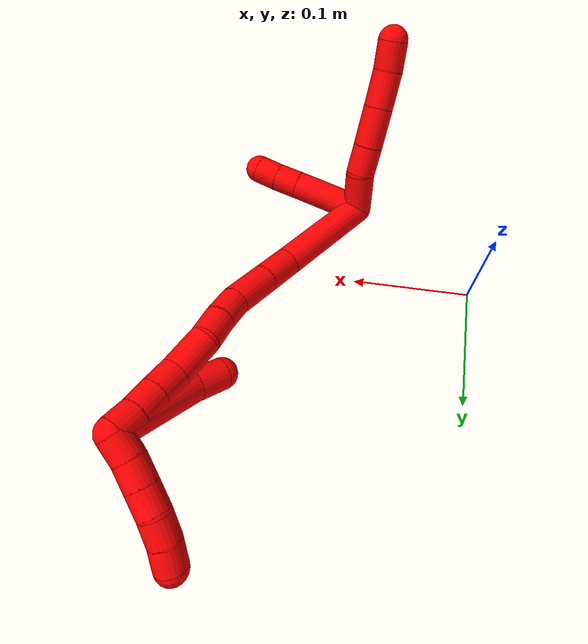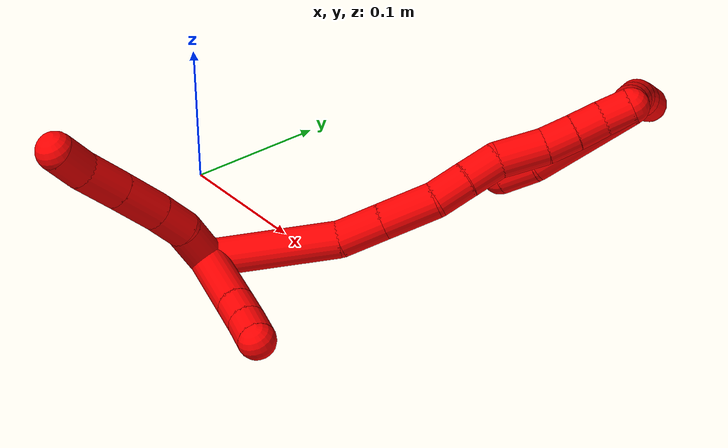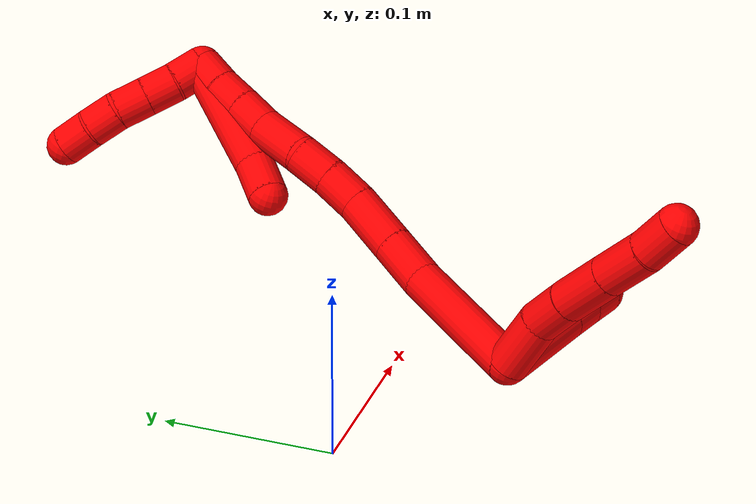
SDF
<sdf version="1.7">
 <world name="default">
  <model name="2">
   <static>0</static>
   <link name="2">
    <collision name="collision-cylinder-e_1_2_8">
     <pose>-0.002932 -0.001728 -0.017487 3.04307 -0.165318 -2.06804</pose>
     <geometry><cylinder><radius>0.0125</radius><length>0.035631</length></cylinder></geometry>
     <surface>
      <friction><ode><mu>1.16</mu><mu2>1.16</mu2><slip1>0</slip1><slip2>0</slip2></ode></friction>
      <contact><ode><kp>1e+06</kp><kd>1</kd><max_vel>0</max_vel><min_depth>0.001</min_depth></ode></contact>
     </surface>
    </collision>
    <visual name="visual-cylinder-e_1_2_8">
     <pose>-0.002932 -0.001728 -0.017487 3.04307 -0.165318 -2.06804</pose>
     <geometry><cylinder><radius>0.0125</radius><length>0.035631</length></cylinder></geometry>
     <material><ambient>1 0 0 1</ambient></material>
    </visual>
    <collision name="collision-cylinder-e_2_8_9">
     <pose>-0.007886 -0.007983 -0.04658 2.76972 -0.160983 -0.810209</pose>
     <geometry><cylinder><radius>0.0125</radius><length>0.025239</length></cylinder></geometry>
     <surface>
      <friction><ode><mu>1.16</mu><mu2>1.16</mu2><slip1>0</slip1><slip2>0</slip2></ode></friction>
      <contact><ode><kp>1e+06</kp><kd>1</kd><max_vel>0</max_vel><min_depth>0.001</min_depth></ode></contact>
     </surface>
    </collision>
    <visual name="visual-cylinder-e_2_8_9">
     <pose>-0.007886 -0.007983 -0.04658 2.76972 -0.160983 -0.810209</pose>
     <geometry><cylinder><radius>0.0125</radius><length>0.025239</length></cylinder></geometry>
     <material><ambient>1 0 0 1</ambient></material>
    </visual>
    <collision name="collision-cylinder-e_3_9_10">
     <pose>-0.013304 -0.019091 -0.073294 2.73077 -0.203138 -0.909908</pose>
     <geometry><cylinder><radius>0.0125</radius><length>0.033654</length></cylinder></geometry>
     <surface>
      <friction><ode><mu>1.16</mu><mu2>1.16</mu2><slip1>0</slip1><slip2>0</slip2></ode></friction>
      <contact><ode><kp>1e+06</kp><kd>1</kd><max_vel>0</max_vel><min_depth>0.001</min_depth></ode></contact>
     </surface>
    </collision>
    <visual name="visual-cylinder-e_3_9_10">
     <pose>-0.013304 -0.019091 -0.073294 2.73077 -0.203138 -0.909908</pose>
     <geometry><cylinder><radius>0.0125</radius><length>0.033654</length></cylinder></geometry>
     <material><ambient>1 0 0 1</ambient></material>
    </visual>
    <collision name="collision-cylinder-e_4_10_11">
     <pose>-0.020004 -0.031756 -0.102217 2.72673 -0.215596 -0.949891</pose>
     <geometry><cylinder><radius>0.0125</radius><length>0.030902</length></cylinder></geometry>
     <surface>
      <friction><ode><mu>1.16</mu><mu2>1.16</mu2><slip1>0</slip1><slip2>0</slip2></ode></friction>
      <contact><ode><kp>1e+06</kp><kd>1</kd><max_vel>0</max_vel><min_depth>0.001</min_depth></ode></contact>
     </surface>
    </collision>
    <visual name="visual-cylinder-e_4_10_11">
     <pose>-0.020004 -0.031756 -0.102217 2.72673 -0.215596 -0.949891</pose>
     <geometry><cylinder><radius>0.0125</radius><length>0.030902</length></cylinder></geometry>
     <material><ambient>1 0 0 1</ambient></material>
    </visual>
    <collision name="collision-cylinder-e_5_11_6">
     <pose>-0.026097 -0.041088 -0.127547 2.86673 -0.228862 -1.38674</pose>
     <geometry><cylinder><radius>0.0125</radius><length>0.024574</length></cylinder></geometry>
     <surface>
      <friction><ode><mu>1.16</mu><mu2>1.16</mu2><slip1>0</slip1><slip2>0</slip2></ode></friction>
      <contact><ode><kp>1e+06</kp><kd>1</kd><max_vel>0</max_vel><min_depth>0.001</min_depth></ode></contact>
     </surface>
    </collision>
    <visual name="visual-cylinder-e_5_11_6">
     <pose>-0.026097 -0.041088 -0.127547 2.86673 -0.228862 -1.38674</pose>
     <geometry><cylinder><radius>0.0125</radius><length>0.024574</length></cylinder></geometry>
     <material><ambient>1 0 0 1</ambient></material>
    </visual>
    <collision name="collision-cylinder-e_1_2_12">
     <pose>-0.026779 0.012388 -0.002346 -1.75792 -1.13077 1.30718</pose>
     <geometry><cylinder><radius>0.0125</radius><length>0.059196</length></cylinder></geometry>
     <surface>
      <friction><ode><mu>1.16</mu><mu2>1.16</mu2><slip1>0</slip1><slip2>0</slip2></ode></friction>
      <contact><ode><kp>1e+06</kp><kd>1</kd><max_vel>0</max_vel><min_depth>0.001</min_depth></ode></contact>
     </surface>
    </collision>
    <visual name="visual-cylinder-e_1_2_12">
     <pose>-0.026779 0.012388 -0.002346 -1.75792 -1.13077 1.30718</pose>
     <geometry><cylinder><radius>0.0125</radius><length>0.059196</length></cylinder></geometry>
     <material><ambient>1 0 0 1</ambient></material>
    </visual>
    <collision name="collision-cylinder-e_2_12_13">
     <pose>-0.062867 0.029044 -0.005302 -1.71303 -1.13698 1.27005</pose>
     <geometry><cylinder><radius>0.0125</radius><length>0.02052</length></cylinder></geometry>
     <surface>
      <friction><ode><mu>1.16</mu><mu2>1.16</mu2><slip1>0</slip1><slip2>0</slip2></ode></friction>
      <contact><ode><kp>1e+06</kp><kd>1</kd><max_vel>0</max_vel><min_depth>0.001</min_depth></ode></contact>
     </surface>
    </collision>
    <visual name="visual-cylinder-e_2_12_13">
     <pose>-0.062867 0.029044 -0.005302 -1.71303 -1.13698 1.27005</pose>
     <geometry><cylinder><radius>0.0125</radius><length>0.02052</length></cylinder></geometry>
     <material><ambient>1 0 0 1</ambient></material>
    </visual>
    <collision name="collision-cylinder-e_3_13_5">
     <pose>-0.08147 0.03725 -0.006908 -1.81834 -1.15893 1.39774</pose>
     <geometry><cylinder><radius>0.0125</radius><length>0.020284</length></cylinder></geometry>
     <surface>
      <friction><ode><mu>1.16</mu><mu2>1.16</mu2><slip1>0</slip1><slip2>0</slip2></ode></friction>
      <contact><ode><kp>1e+06</kp><kd>1</kd><max_vel>0</max_vel><min_depth>0.001</min_depth></ode></contact>
     </surface>
    </collision>
    <visual name="visual-cylinder-e_3_13_5">
     <pose>-0.08147 0.03725 -0.006908 -1.81834 -1.15893 1.39774</pose>
     <geometry><cylinder><radius>0.0125</radius><length>0.020284</length></cylinder></geometry>
     <material><ambient>1 0 0 1</ambient></material>
    </visual>
    <collision name="collision-cylinder-e_1_2_14">
     <pose>0.002295 0.043692 0.006559 -1.4218 0.051903 -0.044696</pose>
     <geometry><cylinder><radius>0.0125</radius><length>0.088481</length></cylinder></geometry>
     <surface>
      <friction><ode><mu>1.16</mu><mu2>1.16</mu2><slip1>0</slip1><slip2>0</slip2></ode></friction>
      <contact><ode><kp>1e+06</kp><kd>1</kd><max_vel>0</max_vel><min_depth>0.001</min_depth></ode></contact>
     </surface>
    </collision>
    <visual name="visual-cylinder-e_1_2_14">
     <pose>0.002295 0.043692 0.006559 -1.4218 0.051903 -0.044696</pose>
     <geometry><cylinder><radius>0.0125</radius><length>0.088481</length></cylinder></geometry>
     <material><ambient>1 0 0 1</ambient></material>
    </visual>
    <collision name="collision-cylinder-e_2_14_15">
     <pose>0.00735 0.102458 0.012016 -1.64371 0.18057 -0.194158</pose>
     <geometry><cylinder><radius>0.0125</radius><length>0.03073</length></cylinder></geometry>
     <surface>
      <friction><ode><mu>1.16</mu><mu2>1.16</mu2><slip1>0</slip1><slip2>0</slip2></ode></friction>
      <contact><ode><kp>1e+06</kp><kd>1</kd><max_vel>0</max_vel><min_depth>0.001</min_depth></ode></contact>
     </surface>
    </collision>
    <visual name="visual-cylinder-e_2_14_15">
     <pose>0.00735 0.102458 0.012016 -1.64371 0.18057 -0.194158</pose>
     <geometry><cylinder><radius>0.0125</radius><length>0.03073</length></cylinder></geometry>
     <material><ambient>1 0 0 1</ambient></material>
    </visual>
    <collision name="collision-cylinder-e_3_15_16">
     <pose>0.013461 0.135815 0.009602 -1.64251 0.180852 -0.194228</pose>
     <geometry><cylinder><radius>0.0125</radius><length>0.037267</length></cylinder></geometry>
     <surface>
      <friction><ode><mu>1.16</mu><mu2>1.16</mu2><slip1>0</slip1><slip2>0</slip2></ode></friction>
      <contact><ode><kp>1e+06</kp><kd>1</kd><max_vel>0</max_vel><min_depth>0.001</min_depth></ode></contact>
     </surface>
    </collision>
    <visual name="visual-cylinder-e_3_15_16">
     <pose>0.013461 0.135815 0.009602 -1.64251 0.180852 -0.194228</pose>
     <geometry><cylinder><radius>0.0125</radius><length>0.037267</length></cylinder></geometry>
     <material><ambient>1 0 0 1</ambient></material>
    </visual>
    <collision name="collision-cylinder-e_4_16_17">
     <pose>0.021536 0.165184 0.006841 -1.70059 0.399752 -0.453545</pose>
     <geometry><cylinder><radius>0.0125</radius><length>0.024273</length></cylinder></geometry>
     <surface>
      <friction><ode><mu>1.16</mu><mu2>1.16</mu2><slip1>0</slip1><slip2>0</slip2></ode></friction>
      <contact><ode><kp>1e+06</kp><kd>1</kd><max_vel>0</max_vel><min_depth>0.001</min_depth></ode></contact>
     </surface>
    </collision>
    <visual name="visual-cylinder-e_4_16_17">
     <pose>0.021536 0.165184 0.006841 -1.70059 0.399752 -0.453545</pose>
     <geometry><cylinder><radius>0.0125</radius><length>0.024273</length></cylinder></geometry>
     <material><ambient>1 0 0 1</ambient></material>
    </visual>
    <collision name="collision-cylinder-e_5_17_18">
     <pose>0.031479 0.186946 0.004685 -1.6371 0.453884 -0.483858</pose>
     <geometry><cylinder><radius>0.0125</radius><length>0.02381</length></cylinder></geometry>
     <surface>
      <friction><ode><mu>1.16</mu><mu2>1.16</mu2><slip1>0</slip1><slip2>0</slip2></ode></friction>
      <contact><ode><kp>1e+06</kp><kd>1</kd><max_vel>0</max_vel><min_depth>0.001</min_depth></ode></contact>
     </surface>
    </collision>
    <visual name="visual-cylinder-e_5_17_18">
     <pose>0.031479 0.186946 0.004685 -1.6371 0.453884 -0.483858</pose>
     <geometry><cylinder><radius>0.0125</radius><length>0.02381</length></cylinder></geometry>
     <material><ambient>1 0 0 1</ambient></material>
    </visual>
    <collision name="collision-cylinder-e_6_18_19">
     <pose>0.04083 0.213397 0.006187 -1.43158 0.253767 -0.220977</pose>
     <geometry><cylinder><radius>0.0125</radius><length>0.032911</length></cylinder></geometry>
     <surface>
      <friction><ode><mu>1.16</mu><mu2>1.16</mu2><slip1>0</slip1><slip2>0</slip2></ode></friction>
      <contact><ode><kp>1e+06</kp><kd>1</kd><max_vel>0</max_vel><min_depth>0.001</min_depth></ode></contact>
     </surface>
    </collision>
    <visual name="visual-cylinder-e_6_18_19">
     <pose>0.04083 0.213397 0.006187 -1.43158 0.253767 -0.220977</pose>
     <geometry><cylinder><radius>0.0125</radius><length>0.032911</length></cylinder></geometry>
     <material><ambient>1 0 0 1</ambient></material>
    </visual>
    <collision name="collision-cylinder-e_7_19_20">
     <pose>0.047949 0.239617 0.008049 -1.6041 0.278363 -0.287665</pose>
     <geometry><cylinder><radius>0.0125</radius><length>0.02174</length></cylinder></geometry>
     <surface>
      <friction><ode><mu>1.16</mu><mu2>1.16</mu2><slip1>0</slip1><slip2>0</slip2></ode></friction>
      <contact><ode><kp>1e+06</kp><kd>1</kd><max_vel>0</max_vel><min_depth>0.001</min_depth></ode></contact>
     </surface>
    </collision>
    <visual name="visual-cylinder-e_7_19_20">
     <pose>0.047949 0.239617 0.008049 -1.6041 0.278363 -0.287665</pose>
     <geometry><cylinder><radius>0.0125</radius><length>0.02174</length></cylinder></geometry>
     <material><ambient>1 0 0 1</ambient></material>
    </visual>
    <collision name="collision-cylinder-e_8_20_21">
     <pose>0.054082 0.259819 0.007346 -1.60712 0.311757 -0.323098</pose>
     <geometry><cylinder><radius>0.0125</radius><length>0.020515</length></cylinder></geometry>
     <surface>
      <friction><ode><mu>1.16</mu><mu2>1.16</mu2><slip1>0</slip1><slip2>0</slip2></ode></friction>
      <contact><ode><kp>1e+06</kp><kd>1</kd><max_vel>0</max_vel><min_depth>0.001</min_depth></ode></contact>
     </surface>
    </collision>
    <visual name="visual-cylinder-e_8_20_21">
     <pose>0.054082 0.259819 0.007346 -1.60712 0.311757 -0.323098</pose>
     <geometry><cylinder><radius>0.0125</radius><length>0.020515</length></cylinder></geometry>
     <material><ambient>1 0 0 1</ambient></material>
    </visual>
    <collision name="collision-cylinder-e_9_21_1">
     <pose>0.059456 0.279435 0.006233 -1.64765 0.221624 -0.239184</pose>
     <geometry><cylinder><radius>0.0125</radius><length>0.020272</length></cylinder></geometry>
     <surface>
      <friction><ode><mu>1.16</mu><mu2>1.16</mu2><slip1>0</slip1><slip2>0</slip2></ode></friction>
      <contact><ode><kp>1e+06</kp><kd>1</kd><max_vel>0</max_vel><min_depth>0.001</min_depth></ode></contact>
     </surface>
    </collision>
    <visual name="visual-cylinder-e_9_21_1">
     <pose>0.059456 0.279435 0.006233 -1.64765 0.221624 -0.239184</pose>
     <geometry><cylinder><radius>0.0125</radius><length>0.020272</length></cylinder></geometry>
     <material><ambient>1 0 0 1</ambient></material>
    </visual>
    <collision name="collision-cylinder-e_1_1_22">
     <pose>0.06987 0.288856 0.011201 0.076223 0.958891 0.039643</pose>
     <geometry><cylinder><radius>0.0125</radius><length>0.02</length></cylinder></geometry>
     <surface>
      <friction><ode><mu>1.16</mu><mu2>1.16</mu2><slip1>0</slip1><slip2>0</slip2></ode></friction>
      <contact><ode><kp>1e+06</kp><kd>1</kd><max_vel>0</max_vel><min_depth>0.001</min_depth></ode></contact>
     </surface>
    </collision>
    <visual name="visual-cylinder-e_1_1_22">
     <pose>0.06987 0.288856 0.011201 0.076223 0.958891 0.039643</pose>
     <geometry><cylinder><radius>0.0125</radius><length>0.02</length></cylinder></geometry>
     <material><ambient>1 0 0 1</ambient></material>
    </visual>
    <collision name="collision-cylinder-e_2_22_23">
     <pose>0.08608 0.289253 0.022837 -0.140347 0.931407 -0.070621</pose>
     <geometry><cylinder><radius>0.0125</radius><length>0.02</length></cylinder></geometry>
     <surface>
      <friction><ode><mu>1.16</mu><mu2>1.16</mu2><slip1>0</slip1><slip2>0</slip2></ode></friction>
      <contact><ode><kp>1e+06</kp><kd>1</kd><max_vel>0</max_vel><min_depth>0.001</min_depth></ode></contact>
     </surface>
    </collision>
    <visual name="visual-cylinder-e_2_22_23">
     <pose>0.08608 0.289253 0.022837 -0.140347 0.931407 -0.070621</pose>
     <geometry><cylinder><radius>0.0125</radius><length>0.02</length></cylinder></geometry>
     <material><ambient>1 0 0 1</ambient></material>
    </visual>
    <collision name="collision-cylinder-e_3_23_24">
     <pose>0.102158 0.290988 0.034604 -0.152338 0.936344 -0.077143</pose>
     <geometry><cylinder><radius>0.0125</radius><length>0.02</length></cylinder></geometry>
     <surface>
      <friction><ode><mu>1.16</mu><mu2>1.16</mu2><slip1>0</slip1><slip2>0</slip2></ode></friction>
      <contact><ode><kp>1e+06</kp><kd>1</kd><max_vel>0</max_vel><min_depth>0.001</min_depth></ode></contact>
     </surface>
    </collision>
    <visual name="visual-cylinder-e_3_23_24">
     <pose>0.102158 0.290988 0.034604 -0.152338 0.936344 -0.077143</pose>
     <geometry><cylinder><radius>0.0125</radius><length>0.02</length></cylinder></geometry>
     <material><ambient>1 0 0 1</ambient></material>
    </visual>
    <collision name="collision-cylinder-e_4_24_25">
     <pose>0.11694 0.292948 0.047785 -0.143888 0.737977 -0.055723</pose>
     <geometry><cylinder><radius>0.0125</radius><length>0.02</length></cylinder></geometry>
     <surface>
      <friction><ode><mu>1.16</mu><mu2>1.16</mu2><slip1>0</slip1><slip2>0</slip2></ode></friction>
      <contact><ode><kp>1e+06</kp><kd>1</kd><max_vel>0</max_vel><min_depth>0.001</min_depth></ode></contact>
     </surface>
    </collision>
    <visual name="visual-cylinder-e_4_24_25">
     <pose>0.11694 0.292948 0.047785 -0.143888 0.737977 -0.055723</pose>
     <geometry><cylinder><radius>0.0125</radius><length>0.02</length></cylinder></geometry>
     <material><ambient>1 0 0 1</ambient></material>
    </visual>
    <collision name="collision-cylinder-e_5_25_4">
     <pose>0.129326 0.29584 0.063146 -0.223939 0.601408 -0.069709</pose>
     <geometry><cylinder><radius>0.0125</radius><length>0.02</length></cylinder></geometry>
     <surface>
      <friction><ode><mu>1.16</mu><mu2>1.16</mu2><slip1>0</slip1><slip2>0</slip2></ode></friction>
      <contact><ode><kp>1e+06</kp><kd>1</kd><max_vel>0</max_vel><min_depth>0.001</min_depth></ode></contact>
     </surface>
    </collision>
    <visual name="visual-cylinder-e_5_25_4">
     <pose>0.129326 0.29584 0.063146 -0.223939 0.601408 -0.069709</pose>
     <geometry><cylinder><radius>0.0125</radius><length>0.02</length></cylinder></geometry>
     <material><ambient>1 0 0 1</ambient></material>
    </visual>
    <collision name="collision-cylinder-e_1_1_26">
     <pose>0.056534 0.253986 0.016394 1.27083 -0.138467 -0.102186</pose>
     <geometry><cylinder><radius>0.0125</radius><length>0.074631</length></cylinder></geometry>
     <surface>
      <friction><ode><mu>1.16</mu><mu2>1.16</mu2><slip1>0</slip1><slip2>0</slip2></ode></friction>
      <contact><ode><kp>1e+06</kp><kd>1</kd><max_vel>0</max_vel><min_depth>0.001</min_depth></ode></contact>
     </surface>
    </collision>
    <visual name="visual-cylinder-e_1_1_26">
     <pose>0.056534 0.253986 0.016394 1.27083 -0.138467 -0.102186</pose>
     <geometry><cylinder><radius>0.0125</radius><length>0.074631</length></cylinder></geometry>
     <material><ambient>1 0 0 1</ambient></material>
    </visual>
    <collision name="collision-cylinder-e_2_26_3">
     <pose>0.051943 0.206258 0.029832 1.3708 0.044152 0.036102</pose>
     <geometry><cylinder><radius>0.0125</radius><length>0.025369</length></cylinder></geometry>
     <surface>
      <friction><ode><mu>1.16</mu><mu2>1.16</mu2><slip1>0</slip1><slip2>0</slip2></ode></friction>
      <contact><ode><kp>1e+06</kp><kd>1</kd><max_vel>0</max_vel><min_depth>0.001</min_depth></ode></contact>
     </surface>
    </collision>
    <visual name="visual-cylinder-e_2_26_3">
     <pose>0.051943 0.206258 0.029832 1.3708 0.044152 0.036102</pose>
     <geometry><cylinder><radius>0.0125</radius><length>0.025369</length></cylinder></geometry>
     <material><ambient>1 0 0 1</ambient></material>
    </visual>
    <collision name="collision-sphere-3">
     <pose>0.052503 0.193838 0.03235 0 -0 0</pose>
     <geometry><sphere><radius>0.0125</radius></sphere></geometry>
     <surface>
      <friction><ode><mu>1.16</mu><mu2>1.16</mu2><slip1>0</slip1><slip2>0</slip2></ode></friction>
      <contact><ode><kp>1e+06</kp><kd>1</kd><max_vel>0</max_vel><min_depth>0.001</min_depth></ode></contact>
     </surface>
    </collision>
    <visual name="visual-sphere-3">
     <pose>0.052503 0.193838 0.03235 0 -0 0</pose>
     <geometry><sphere><radius>0.0125</radius></sphere></geometry>
     <material><ambient>1 0 0 1</ambient></material>
    </visual>
    <collision name="collision-sphere-26">
     <pose>0.051383 0.218678 0.027315 0 -0 0</pose>
     <geometry><sphere><radius>0.0125</radius></sphere></geometry>
     <surface>
      <friction><ode><mu>1.16</mu><mu2>1.16</mu2><slip1>0</slip1><slip2>0</slip2></ode></friction>
      <contact><ode><kp>1e+06</kp><kd>1</kd><max_vel>0</max_vel><min_depth>0.001</min_depth></ode></contact>
     </surface>
    </collision>
    <visual name="visual-sphere-26">
     <pose>0.051383 0.218678 0.027315 0 -0 0</pose>
     <geometry><sphere><radius>0.0125</radius></sphere></geometry>
     <material><ambient>1 0 0 1</ambient></material>
    </visual>
    <collision name="collision-sphere-4">
     <pose>0.134984 0.297671 0.071186 0 -0 0</pose>
     <geometry><sphere><radius>0.0125</radius></sphere></geometry>
     <surface>
      <friction><ode><mu>1.16</mu><mu2>1.16</mu2><slip1>0</slip1><slip2>0</slip2></ode></friction>
      <contact><ode><kp>1e+06</kp><kd>1</kd><max_vel>0</max_vel><min_depth>0.001</min_depth></ode></contact>
     </surface>
    </collision>
    <visual name="visual-sphere-4">
     <pose>0.134984 0.297671 0.071186 0 -0 0</pose>
     <geometry><sphere><radius>0.0125</radius></sphere></geometry>
     <material><ambient>1 0 0 1</ambient></material>
    </visual>
    <collision name="collision-sphere-25">
     <pose>0.123668 0.294009 0.055107 0 -0 0</pose>
     <geometry><sphere><radius>0.0125</radius></sphere></geometry>
     <surface>
      <friction><ode><mu>1.16</mu><mu2>1.16</mu2><slip1>0</slip1><slip2>0</slip2></ode></friction>
      <contact><ode><kp>1e+06</kp><kd>1</kd><max_vel>0</max_vel><min_depth>0.001</min_depth></ode></contact>
     </surface>
    </collision>
    <visual name="visual-sphere-25">
     <pose>0.123668 0.294009 0.055107 0 -0 0</pose>
     <geometry><sphere><radius>0.0125</radius></sphere></geometry>
     <material><ambient>1 0 0 1</ambient></material>
    </visual>
    <collision name="collision-sphere-24">
     <pose>0.110212 0.291887 0.040463 0 -0 0</pose>
     <geometry><sphere><radius>0.0125</radius></sphere></geometry>
     <surface>
      <friction><ode><mu>1.16</mu><mu2>1.16</mu2><slip1>0</slip1><slip2>0</slip2></ode></friction>
      <contact><ode><kp>1e+06</kp><kd>1</kd><max_vel>0</max_vel><min_depth>0.001</min_depth></ode></contact>
     </surface>
    </collision>
    <visual name="visual-sphere-24">
     <pose>0.110212 0.291887 0.040463 0 -0 0</pose>
     <geometry><sphere><radius>0.0125</radius></sphere></geometry>
     <material><ambient>1 0 0 1</ambient></material>
    </visual>
    <collision name="collision-sphere-23">
     <pose>0.094104 0.290088 0.028745 0 -0 0</pose>
     <geometry><sphere><radius>0.0125</radius></sphere></geometry>
     <surface>
      <friction><ode><mu>1.16</mu><mu2>1.16</mu2><slip1>0</slip1><slip2>0</slip2></ode></friction>
      <contact><ode><kp>1e+06</kp><kd>1</kd><max_vel>0</max_vel><min_depth>0.001</min_depth></ode></contact>
     </surface>
    </collision>
    <visual name="visual-sphere-23">
     <pose>0.094104 0.290088 0.028745 0 -0 0</pose>
     <geometry><sphere><radius>0.0125</radius></sphere></geometry>
     <material><ambient>1 0 0 1</ambient></material>
    </visual>
    <collision name="collision-sphere-22">
     <pose>0.078055 0.288419 0.016929 0 -0 0</pose>
     <geometry><sphere><radius>0.0125</radius></sphere></geometry>
     <surface>
      <friction><ode><mu>1.16</mu><mu2>1.16</mu2><slip1>0</slip1><slip2>0</slip2></ode></friction>
      <contact><ode><kp>1e+06</kp><kd>1</kd><max_vel>0</max_vel><min_depth>0.001</min_depth></ode></contact>
     </surface>
    </collision>
    <visual name="visual-sphere-22">
     <pose>0.078055 0.288419 0.016929 0 -0 0</pose>
     <geometry><sphere><radius>0.0125</radius></sphere></geometry>
     <material><ambient>1 0 0 1</ambient></material>
    </visual>
    <collision name="collision-sphere-1">
     <pose>0.061684 0.289294 0.005473 0 -0 0</pose>
     <geometry><sphere><radius>0.0125</radius></sphere></geometry>
     <surface>
      <friction><ode><mu>1.16</mu><mu2>1.16</mu2><slip1>0</slip1><slip2>0</slip2></ode></friction>
      <contact><ode><kp>1e+06</kp><kd>1</kd><max_vel>0</max_vel><min_depth>0.001</min_depth></ode></contact>
     </surface>
    </collision>
    <visual name="visual-sphere-1">
     <pose>0.061684 0.289294 0.005473 0 -0 0</pose>
     <geometry><sphere><radius>0.0125</radius></sphere></geometry>
     <material><ambient>1 0 0 1</ambient></material>
    </visual>
    <collision name="collision-sphere-21">
     <pose>0.057228 0.269576 0.006992 0 -0 0</pose>
     <geometry><sphere><radius>0.0125</radius></sphere></geometry>
     <surface>
      <friction><ode><mu>1.16</mu><mu2>1.16</mu2><slip1>0</slip1><slip2>0</slip2></ode></friction>
      <contact><ode><kp>1e+06</kp><kd>1</kd><max_vel>0</max_vel><min_depth>0.001</min_depth></ode></contact>
     </surface>
    </collision>
    <visual name="visual-sphere-21">
     <pose>0.057228 0.269576 0.006992 0 -0 0</pose>
     <geometry><sphere><radius>0.0125</radius></sphere></geometry>
     <material><ambient>1 0 0 1</ambient></material>
    </visual>
    <collision name="collision-sphere-6">
     <pose>-0.028885 -0.044336 -0.139065 0 -0 0</pose>
     <geometry><sphere><radius>0.0125</radius></sphere></geometry>
     <surface>
      <friction><ode><mu>1.16</mu><mu2>1.16</mu2><slip1>0</slip1><slip2>0</slip2></ode></friction>
      <contact><ode><kp>1e+06</kp><kd>1</kd><max_vel>0</max_vel><min_depth>0.001</min_depth></ode></contact>
     </surface>
    </collision>
    <visual name="visual-sphere-6">
     <pose>-0.028885 -0.044336 -0.139065 0 -0 0</pose>
     <geometry><sphere><radius>0.0125</radius></sphere></geometry>
     <material><ambient>1 0 0 1</ambient></material>
    </visual>
    <collision name="collision-sphere-11">
     <pose>-0.023309 -0.03784 -0.11603 0 -0 0</pose>
     <geometry><sphere><radius>0.0125</radius></sphere></geometry>
     <surface>
      <friction><ode><mu>1.16</mu><mu2>1.16</mu2><slip1>0</slip1><slip2>0</slip2></ode></friction>
      <contact><ode><kp>1e+06</kp><kd>1</kd><max_vel>0</max_vel><min_depth>0.001</min_depth></ode></contact>
     </surface>
    </collision>
    <visual name="visual-sphere-11">
     <pose>-0.023309 -0.03784 -0.11603 0 -0 0</pose>
     <geometry><sphere><radius>0.0125</radius></sphere></geometry>
     <material><ambient>1 0 0 1</ambient></material>
    </visual>
    <collision name="collision-sphere-10">
     <pose>-0.016699 -0.025673 -0.088404 0 -0 0</pose>
     <geometry><sphere><radius>0.0125</radius></sphere></geometry>
     <surface>
      <friction><ode><mu>1.16</mu><mu2>1.16</mu2><slip1>0</slip1><slip2>0</slip2></ode></friction>
      <contact><ode><kp>1e+06</kp><kd>1</kd><max_vel>0</max_vel><min_depth>0.001</min_depth></ode></contact>
     </surface>
    </collision>
    <visual name="visual-sphere-10">
     <pose>-0.016699 -0.025673 -0.088404 0 -0 0</pose>
     <geometry><sphere><radius>0.0125</radius></sphere></geometry>
     <material><ambient>1 0 0 1</ambient></material>
    </visual>
    <collision name="collision-sphere-9">
     <pose>-0.009909 -0.012509 -0.058185 0 -0 0</pose>
     <geometry><sphere><radius>0.0125</radius></sphere></geometry>
     <surface>
      <friction><ode><mu>1.16</mu><mu2>1.16</mu2><slip1>0</slip1><slip2>0</slip2></ode></friction>
      <contact><ode><kp>1e+06</kp><kd>1</kd><max_vel>0</max_vel><min_depth>0.001</min_depth></ode></contact>
     </surface>
    </collision>
    <visual name="visual-sphere-9">
     <pose>-0.009909 -0.012509 -0.058185 0 -0 0</pose>
     <geometry><sphere><radius>0.0125</radius></sphere></geometry>
     <material><ambient>1 0 0 1</ambient></material>
    </visual>
    <collision name="collision-sphere-2">
     <geometry><sphere><radius>0.0125</radius></sphere></geometry>
     <surface>
      <friction><ode><mu>1.16</mu><mu2>1.16</mu2><slip1>0</slip1><slip2>0</slip2></ode></friction>
      <contact><ode><kp>1e+06</kp><kd>1</kd><max_vel>0</max_vel><min_depth>0.001</min_depth></ode></contact>
     </surface>
    </collision>
    <visual name="visual-sphere-2">
     <geometry><sphere><radius>0.0125</radius></sphere></geometry>
     <material><ambient>1 0 0 1</ambient></material>
    </visual>
    <collision name="collision-sphere-19">
     <pose>0.044962 0.229171 0.008397 0 -0 0</pose>
     <geometry><sphere><radius>0.0125</radius></sphere></geometry>
     <surface>
      <friction><ode><mu>1.16</mu><mu2>1.16</mu2><slip1>0</slip1><slip2>0</slip2></ode></friction>
      <contact><ode><kp>1e+06</kp><kd>1</kd><max_vel>0</max_vel><min_depth>0.001</min_depth></ode></contact>
     </surface>
    </collision>
    <visual name="visual-sphere-19">
     <pose>0.044962 0.229171 0.008397 0 -0 0</pose>
     <geometry><sphere><radius>0.0125</radius></sphere></geometry>
     <material><ambient>1 0 0 1</ambient></material>
    </visual>
    <collision name="collision-sphere-8">
     <pose>-0.005864 -0.003457 -0.034975 0 -0 0</pose>
     <geometry><sphere><radius>0.0125</radius></sphere></geometry>
     <surface>
      <friction><ode><mu>1.16</mu><mu2>1.16</mu2><slip1>0</slip1><slip2>0</slip2></ode></friction>
      <contact><ode><kp>1e+06</kp><kd>1</kd><max_vel>0</max_vel><min_depth>0.001</min_depth></ode></contact>
     </surface>
    </collision>
    <visual name="visual-sphere-8">
     <pose>-0.005864 -0.003457 -0.034975 0 -0 0</pose>
     <geometry><sphere><radius>0.0125</radius></sphere></geometry>
     <material><ambient>1 0 0 1</ambient></material>
    </visual>
    <collision name="collision-sphere-12">
     <pose>-0.053557 0.024775 -0.004691 0 -0 0</pose>
     <geometry><sphere><radius>0.0125</radius></sphere></geometry>
     <surface>
      <friction><ode><mu>1.16</mu><mu2>1.16</mu2><slip1>0</slip1><slip2>0</slip2></ode></friction>
      <contact><ode><kp>1e+06</kp><kd>1</kd><max_vel>0</max_vel><min_depth>0.001</min_depth></ode></contact>
     </surface>
    </collision>
    <visual name="visual-sphere-12">
     <pose>-0.053557 0.024775 -0.004691 0 -0 0</pose>
     <geometry><sphere><radius>0.0125</radius></sphere></geometry>
     <material><ambient>1 0 0 1</ambient></material>
    </visual>
    <collision name="collision-sphere-13">
     <pose>-0.072176 0.033313 -0.005914 0 -0 0</pose>
     <geometry><sphere><radius>0.0125</radius></sphere></geometry>
     <surface>
      <friction><ode><mu>1.16</mu><mu2>1.16</mu2><slip1>0</slip1><slip2>0</slip2></ode></friction>
      <contact><ode><kp>1e+06</kp><kd>1</kd><max_vel>0</max_vel><min_depth>0.001</min_depth></ode></contact>
     </surface>
    </collision>
    <visual name="visual-sphere-13">
     <pose>-0.072176 0.033313 -0.005914 0 -0 0</pose>
     <geometry><sphere><radius>0.0125</radius></sphere></geometry>
     <material><ambient>1 0 0 1</ambient></material>
    </visual>
    <collision name="collision-sphere-5">
     <pose>-0.090764 0.041186 -0.007903 0 -0 0</pose>
     <geometry><sphere><radius>0.0125</radius></sphere></geometry>
     <surface>
      <friction><ode><mu>1.16</mu><mu2>1.16</mu2><slip1>0</slip1><slip2>0</slip2></ode></friction>
      <contact><ode><kp>1e+06</kp><kd>1</kd><max_vel>0</max_vel><min_depth>0.001</min_depth></ode></contact>
     </surface>
    </collision>
    <visual name="visual-sphere-5">
     <pose>-0.090764 0.041186 -0.007903 0 -0 0</pose>
     <geometry><sphere><radius>0.0125</radius></sphere></geometry>
     <material><ambient>1 0 0 1</ambient></material>
    </visual>
    <collision name="collision-sphere-14">
     <pose>0.00459 0.087383 0.013117 0 -0 0</pose>
     <geometry><sphere><radius>0.0125</radius></sphere></geometry>
     <surface>
      <friction><ode><mu>1.16</mu><mu2>1.16</mu2><slip1>0</slip1><slip2>0</slip2></ode></friction>
      <contact><ode><kp>1e+06</kp><kd>1</kd><max_vel>0</max_vel><min_depth>0.001</min_depth></ode></contact>
     </surface>
    </collision>
    <visual name="visual-sphere-14">
     <pose>0.00459 0.087383 0.013117 0 -0 0</pose>
     <geometry><sphere><radius>0.0125</radius></sphere></geometry>
     <material><ambient>1 0 0 1</ambient></material>
    </visual>
    <collision name="collision-sphere-15">
     <pose>0.010109 0.117533 0.010915 0 -0 0</pose>
     <geometry><sphere><radius>0.0125</radius></sphere></geometry>
     <surface>
      <friction><ode><mu>1.16</mu><mu2>1.16</mu2><slip1>0</slip1><slip2>0</slip2></ode></friction>
      <contact><ode><kp>1e+06</kp><kd>1</kd><max_vel>0</max_vel><min_depth>0.001</min_depth></ode></contact>
     </surface>
    </collision>
    <visual name="visual-sphere-15">
     <pose>0.010109 0.117533 0.010915 0 -0 0</pose>
     <geometry><sphere><radius>0.0125</radius></sphere></geometry>
     <material><ambient>1 0 0 1</ambient></material>
    </visual>
    <collision name="collision-sphere-16">
     <pose>0.016812 0.154098 0.008288 0 -0 0</pose>
     <geometry><sphere><radius>0.0125</radius></sphere></geometry>
     <surface>
      <friction><ode><mu>1.16</mu><mu2>1.16</mu2><slip1>0</slip1><slip2>0</slip2></ode></friction>
      <contact><ode><kp>1e+06</kp><kd>1</kd><max_vel>0</max_vel><min_depth>0.001</min_depth></ode></contact>
     </surface>
    </collision>
    <visual name="visual-sphere-16">
     <pose>0.016812 0.154098 0.008288 0 -0 0</pose>
     <geometry><sphere><radius>0.0125</radius></sphere></geometry>
     <material><ambient>1 0 0 1</ambient></material>
    </visual>
    <collision name="collision-sphere-17">
     <pose>0.026259 0.17627 0.005394 0 -0 0</pose>
     <geometry><sphere><radius>0.0125</radius></sphere></geometry>
     <surface>
      <friction><ode><mu>1.16</mu><mu2>1.16</mu2><slip1>0</slip1><slip2>0</slip2></ode></friction>
      <contact><ode><kp>1e+06</kp><kd>1</kd><max_vel>0</max_vel><min_depth>0.001</min_depth></ode></contact>
     </surface>
    </collision>
    <visual name="visual-sphere-17">
     <pose>0.026259 0.17627 0.005394 0 -0 0</pose>
     <geometry><sphere><radius>0.0125</radius></sphere></geometry>
     <material><ambient>1 0 0 1</ambient></material>
    </visual>
    <collision name="collision-sphere-18">
     <pose>0.036699 0.197622 0.003976 0 -0 0</pose>
     <geometry><sphere><radius>0.0125</radius></sphere></geometry>
     <surface>
      <friction><ode><mu>1.16</mu><mu2>1.16</mu2><slip1>0</slip1><slip2>0</slip2></ode></friction>
      <contact><ode><kp>1e+06</kp><kd>1</kd><max_vel>0</max_vel><min_depth>0.001</min_depth></ode></contact>
     </surface>
    </collision>
    <visual name="visual-sphere-18">
     <pose>0.036699 0.197622 0.003976 0 -0 0</pose>
     <geometry><sphere><radius>0.0125</radius></sphere></geometry>
     <material><ambient>1 0 0 1</ambient></material>
    </visual>
    <collision name="collision-sphere-20">
     <pose>0.050935 0.250063 0.007701 0 -0 0</pose>
     <geometry><sphere><radius>0.0125</radius></sphere></geometry>
     <surface>
      <friction><ode><mu>1.16</mu><mu2>1.16</mu2><slip1>0</slip1><slip2>0</slip2></ode></friction>
      <contact><ode><kp>1e+06</kp><kd>1</kd><max_vel>0</max_vel><min_depth>0.001</min_depth></ode></contact>
     </surface>
    </collision>
    <visual name="visual-sphere-20">
     <pose>0.050935 0.250063 0.007701 0 -0 0</pose>
     <geometry><sphere><radius>0.0125</radius></sphere></geometry>
     <material><ambient>1 0 0 1</ambient></material>
    </visual>
    <inertial>
     <pose>0.02132 0.128397 -0.004178 0 -0 0</pose>
     <mass>0.75</mass>
     <inertia>
      <ixx>0.000116</ixx>
      <ixy>0</ixy>
      <ixz>0</ixz>
      <iyy>4.3e-05</iyy>
      <iyz>0</iyz>
      <izz>-3.8e-05</izz>
     </inertia>
    </inertial>
   </link>
   <pose>0.105496 -0.06795 0.012224 2.85112 -0.1894 2.45581</pose>
  </model>
 </world>
</sdf>
